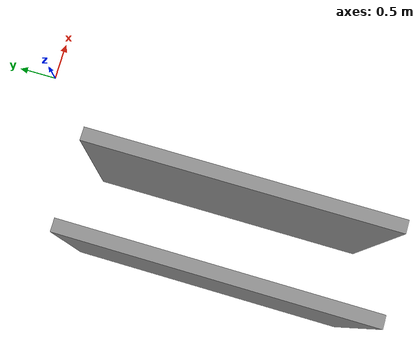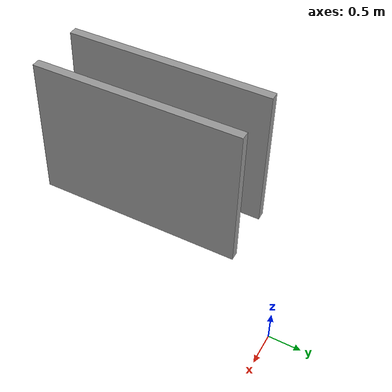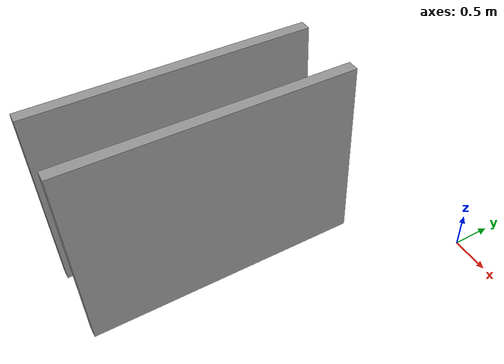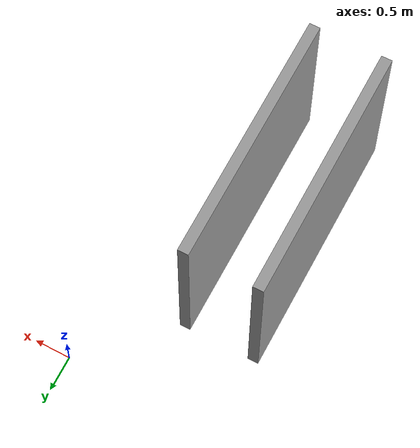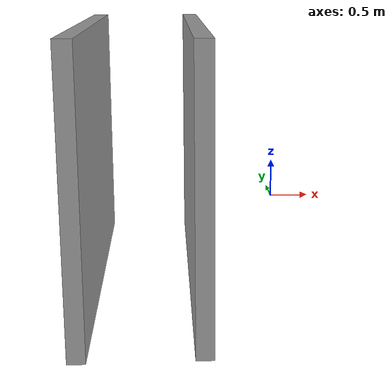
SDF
<?xml version='1.0'?>
<sdf version='1.7'>
  <model name='zerodoteightfive'>
    <pose>-1.10247 -2.28999 0 0 -0 0</pose>
    <link name='Wall_0'>
      <collision name='Wall_0_Collision'>
        <geometry>
          <box>
            <size>3.5 0.15 2.5</size>
          </box>
        </geometry>
        <pose>0 0 1.25 0 -0 0</pose>
      </collision>
      <visual name='Wall_0_Visual'>
        <pose>0 0 1.25 0 -0 0</pose>
        <geometry>
          <box>
            <size>3.5 0.15 2.5</size>
          </box>
        </geometry>
        <material>
          <script>
            <uri>file://media/materials/scripts/gazebo.material</uri>
            <name>Gazebo/Grey</name>
          </script>
          <ambient>1 1 1 1</ambient>
        </material>
        <meta>
          <layer>0</layer>
        </meta>
      </visual>
      <pose>-1.02747 -0.539986 0 0 -0 -1.5708</pose>
    </link>
    <link name='Wall_4'>
      <collision name='Wall_4_Collision'>
        <geometry>
          <box>
            <size>3.5 0.15 2.5</size>
          </box>
        </geometry>
        <pose>0 0 1.25 0 -0 0</pose>
      </collision>
      <visual name='Wall_4_Visual'>
        <pose>0 0 1.25 0 -0 0</pose>
        <geometry>
          <box>
            <size>3.5 0.15 2.5</size>
          </box>
        </geometry>
        <material>
          <script>
            <uri>file://media/materials/scripts/gazebo.material</uri>
            <name>Gazebo/Grey</name>
          </script>
          <ambient>1 1 1 1</ambient>
        </material>
        <meta>
          <layer>0</layer>
        </meta>
      </visual>
      <pose>-0.026943 -0.539986 0 0 -0 -1.5708</pose>
    </link>
    <static>1</static>
  </model>
</sdf>
